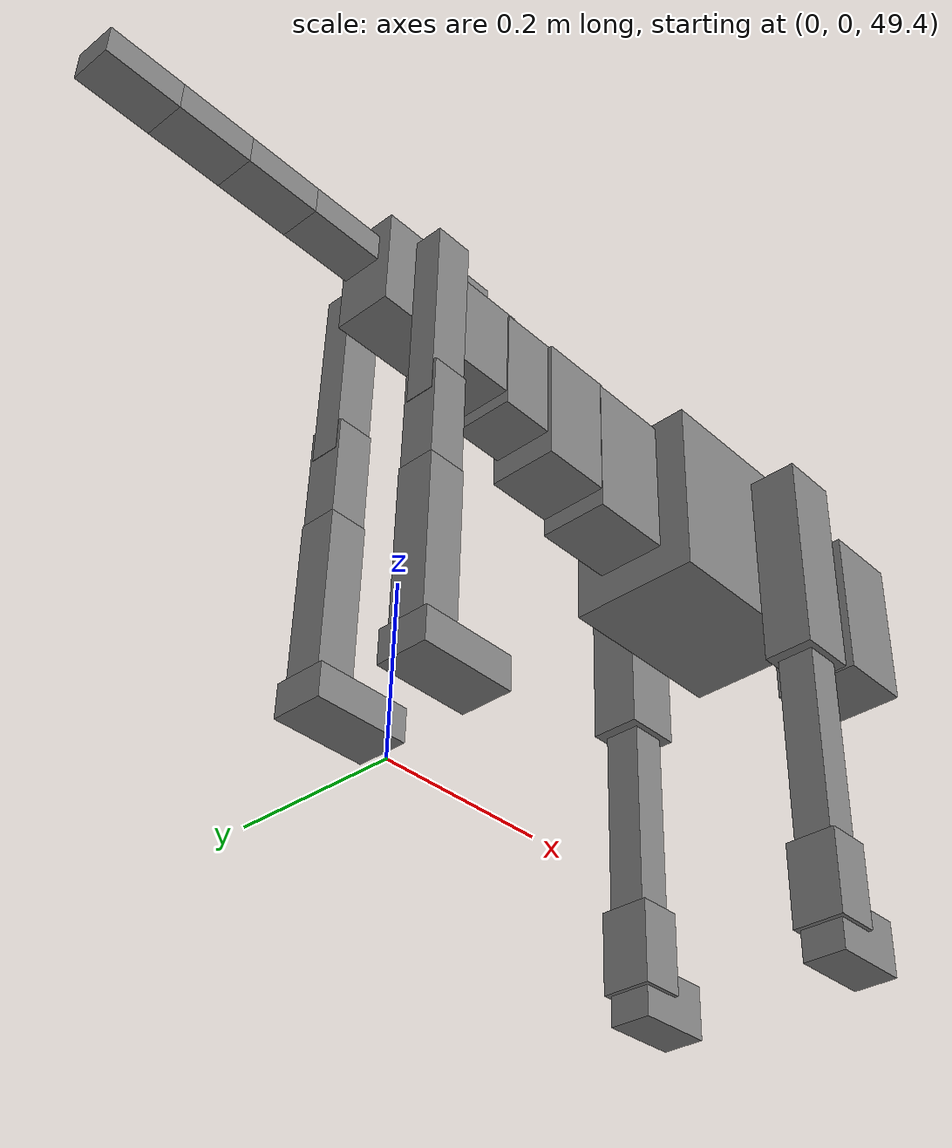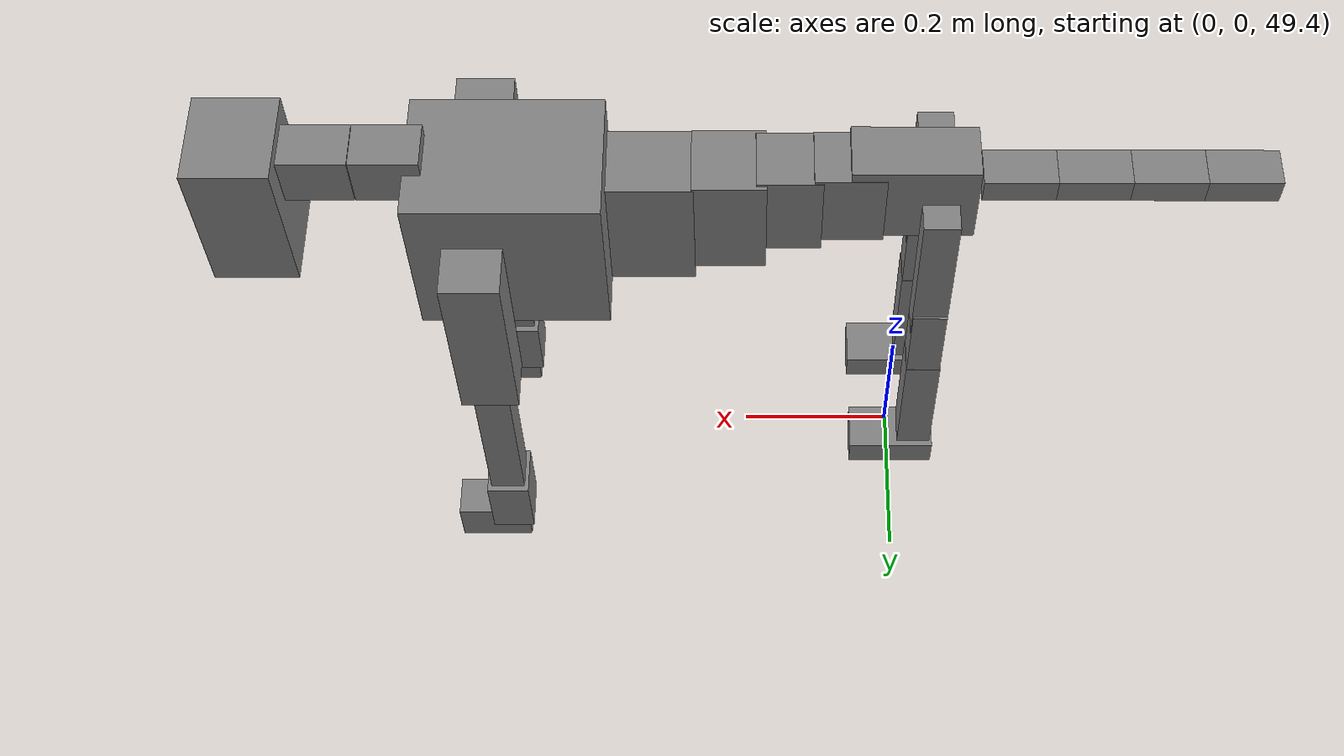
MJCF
<mujoco model="dog">

    <default>
        <joint armature="0.02" stiffness="1" damping="0.2" limited="true"/>
        <geom condim="3" friction="1 0.05 0.05" margin="0.01"/>
        <motor ctrllimited="true" ctrlrange="-1.0 1.0" forcelimited="true" gear="50"/>
    </default>

    <compiler inertiafromgeom="true" angle="radian"/>

    <option timestep="0.016" iterations="50" tolerance="1e-10" solver="Newton" jacobian="dense" cone="pyramidal"/>

    <size nconmax="20000" njmax="60000" nstack="5000000"/>
    <visual>
        <map force="0.1" zfar="30"/>
        <rgba haze="0.15 0.25 0.35 1"/>
        <quality shadowsize="2048"/>
        <global offwidth="800" offheight="800"/>
    </visual>

    <asset>
        <texture type="skybox" builtin="gradient" rgb1="0.3 0.5 0.7" rgb2="0 0 0" width="512" height="512"/>
        <texture name="texplane" type="2d" builtin="checker" rgb1=".2 .3 .4" rgb2=".1 0.15 0.2" width="512" height="512"
                 mark="cross" markrgb=".8 .8 .8"/>
        <texture name="texgeom" type="cube" builtin="flat" mark="cross" width="127" height="1278" rgb1="0.8 0.6 0.4"
                 rgb2="0.8 0.6 0.4" markrgb="1 1 1" random="0.01"/>

        <material name="matplane" reflectance="0.3" texture="texplane" texrepeat="1 1" texuniform="true"/>
        <material name="matgeom" texture="texgeom" texuniform="true" rgba="0.8 0.6 .4 1"/>
    </asset>

    <worldbody>
        <geom name="floor" pos="0 0 0" size="0 0 .25" type="plane" material="matplane" condim="3"/>

        <light directional="false" diffuse=".2 .2 .2" specular="0 0 0" pos="0 0 5" dir="0 0 -1" castshadow="false"/>
        <light mode="targetbodycom" target="torso" directional="false" diffuse=".8 .8 .8" specular="0.3 0.3 0.3"
               pos="0 0 4.0" dir="0 0 -1"/>

        <body name="root" pos="0 0 50">
            <freejoint name="root_1"/>
            <geom type="box" pos="0 0 -0.02" size="0.0774  0.0358  0.063" density="2030"/>

            <body name="spine1" pos="0.054 0 0">
                <joint name="spine1_y" axis="0 1 0" range="0 0.7" limited="true"/>
                <geom type="box" pos="0.02375 0 -0.03" size="0.04375  0.0375  0.05985" density="2030"/>

                <body name="spine2" pos="0.0612 0 0">
                    <joint name="spine2_y" axis="0 1 0" range="-0.15 0.15" limited="true"/>
                    <geom type="box" pos="0.03555  0  -0.04" size="0.04055  0.039  0.06615" density="2030"/>

                    <body name="spine3" pos="0.0730 0 0">
                        <joint name="spine3_y" axis="0 1 0" range="-0.15 0.15" limited="true"/>
                        <geom type="box" pos="0.03555  0  -0.057" size="0.04555  0.0445  0.081" density="2030"/>

                        <body name="spine4" pos="0.0780 0 0">
                            <joint name="spine4_y" axis="0 1 0" range="-0.15 0.15" limited="true"/>
                            <geom type="box" pos="0.05265  0  -0.07" size="0.05265  0.045  0.09135" density="2030"/>

                            <body name="torso" pos="0.1082 0 0">
                                <joint name="torso_y" axis="0 1 0" range="-0.15 0.15" limited="true"/>
                                <geom type="box" pos="0.11925  0  -0.085" size="0.11925  0.085  0.11745"
                                      density="2030"/>

                                <body name="neck1" pos="0.2160  0   0.0180">
                                    <joint name="neck1_y" axis="0 1 0" range="-1.2  -1" limited="true"/>
                                    <geom type="box" pos="0.0423  0  0" size="0.0423  0.03  0.036" density="2325"/>

                                    <body name="neck2" pos="0.0853  0  0">
                                        <joint name="neck2_y" axis="0 1 0" range="0.1  0" limited="true"/>
                                        <geom type="box" pos="0.0423  0  0" size="0.0423  0.03  0.036" density="2325"/>

                                        <body name="head" pos="0.0853  0  0">
                                            <joint name="head_y" axis="0 1 0" range="-0.3  -0.2" limited="true"/>
                                            <geom type="box" pos="0.0531  0  -0.055" size="0.0531  0.06  0.1044"
                                                  density="4030"/>

                                        </body>
                                    </body>
                                </body>

                                <body name="front_shoulder" pos="0.156  0   -0.0480">
                                    <joint name="front_shoulder_y" axis="0 1 0" range="-1 1.5" limited="true"/>
                                    <geom type="box" pos="0 0.13 -0.1050" size="0.0367  0.0313  0.1317" density="1158"/>
                                    <geom type="box" pos="0 -0.13 -0.1050" size="0.0367  0.0313  0.1317"
                                          density="1158"/>

                                    <body name="front_elbow" pos="0  0  -0.2100">
                                        <joint name="front_elbow_y" axis="0 1 0" range="-2 0" limited="true"/>
                                        <geom type="box" pos="0 0.13 -0.1382" size="0.0228  0.0233  0.1382"
                                              density="1081"/>
                                        <geom type="box" pos="0 -0.13 -0.1382" size="0.0228  0.0233  0.1382"
                                              density="1081"/>

                                        <body name="front_wrist" pos="0  0  -0.2764">
                                            <joint name="front_wrist_y" axis="0 1 0" range="-0.2 0" limited="true"/>
                                            <geom type="box" pos="0 0.13 -0.0380" size="0.0281  0.0313  0.0512"
                                                  density="1664"/>
                                            <geom type="box" pos="0 -0.13 -0.0380" size="0.0281  0.0313  0.0512"
                                                  density="1664"/>

                                            <body name="front_finger_end" pos="0  0  -0.0761">
                                                <joint name="front_finger_y" axis="0 1 0" range="-0.4 1"
                                                       limited="true"/>
                                                <geom type="box" pos="0.0264  0.13  -0.0175"
                                                      size="0.0484  0.0264  0.0325" density="1515"/>
                                                <geom type="box" pos="0.0264  -0.13  -0.0175"
                                                      size="0.0484  0.0264  0.0325" density="1515"/>

                                            </body>

                                        </body>
                                    </body>
                                </body>

                            </body>
                        </body>
                    </body>
                </body>
            </body>

            <body name="back_hip" pos="-0.03 0 -0.018">
                <joint name="back_hip_y" axis="0 1 0" range="-1.5 0.3" limited="true"/>
                <geom type="box" pos="0 0.07 -0.0926" size="0.0224  0.0176  0.1154" density="1154"/>
                <geom type="box" pos="0 -0.07 -0.0926" size="0.0224  0.0176  0.1154" density="1154"/>

                <body name="back_knee" pos="0  0  -0.1852">
                    <joint name="back_knee_y" axis="0 1 0" range="0 2.8" limited="true"/>
                    <geom type="box" pos="0 0.07 -0.0598" size="0.0217  0.0213  0.0753" density="1227"/>
                    <geom type="box" pos="0 -0.07 -0.0598" size="0.0217  0.0213  0.0753" density="1227"/>

                    <body name="back_ankle" pos="0  0  -0.1195">
                        <joint name="back_ankle_y" axis="0 1 0" range="-2.2 0" limited="true"/>
                        <geom type="box" pos="0 0.07 -0.0968" size="0.0225  0.0225  0.1081" density="1284"/>
                        <geom type="box" pos="0 -0.07 -0.0968" size="0.0225  0.0225  0.1081" density="1284"/>

                        <body name="back_toe_end" pos="0  0  -0.1936">
                            <joint name="back_toe_y" axis="0 1 0" range="-0.4 1" limited="true"/>
                            <geom type="box" pos="0.0309  0.07  -0.0049" size="0.0567  0.0309  0.0199" density="1515"/>
                            <geom type="box" pos="0.0309  -0.07  -0.0049" size="0.0567  0.0309  0.0199" density="1515"/>

                        </body>
                    </body>
                </body>
            </body>

            <body name="tail1" pos="-0.074 0 -0.006">
                <joint name="tail1_y" axis="0 1 0" range="-0.2 0.2" limited="true"/>
                <geom type="box" pos="-0.0536  0  0" size="0.045  0.025  0.0175" density="1587"/>

                <body name="tail2" pos="-0.09 0 0">
                    <joint name="tail2_y" axis="0 1 0" range="-0.2 0.2" limited="true"/>
                    <geom type="box" pos="-0.0536  0  0" size="0.045  0.025  0.0175" density="1587"/>

                    <body name="tail3" pos="-0.09 0 0">
                        <joint name="tail3_y" axis="0 1 0" range="-0.2 0.2" limited="true"/>
                        <geom type="box" pos="-0.0536  0  0" size="0.045  0.025  0.0175" density="1587"/>

                        <body name="tail4" pos="-0.09 0 0">
                            <joint name="tail4_y" axis="0 1 0" range="-0.2 0.2" limited="true"/>
                            <geom type="box" pos="-0.0536  0  0" size="0.045  0.025  0.0175" density="1587"/>

                        </body>
                    </body>
                </body>
            </body>
        </body>
    </worldbody>

    <actuator>
        <motor joint="spine1_y" forcerange="-150 150     "/>
        <motor joint="spine2_y" forcerange="-150 150     "/>
        <motor joint="spine3_y" forcerange="-150 150     "/>
        <motor joint="spine4_y" forcerange="-150 150     "/>
        <motor joint="torso_y" forcerange="-150 150     "/>
        <motor joint="neck1_y" forcerange="-100 100       "/>
        <motor joint="neck2_y" forcerange="-100 100       "/>
        <motor joint="head_y" forcerange="-150 150       "/>
        <motor joint="front_shoulder_y" forcerange="-169.80 139.06"/>
        <motor joint="front_elbow_y" forcerange="-152.42 116.78"/>
        <motor joint="front_wrist_y" forcerange="-136.81 113.27"/>
        <motor joint="front_finger_y" forcerange="-59.61 41.18"/>
        <motor joint="back_hip_y" forcerange="-203.40 231.02"/>
        <motor joint="back_knee_y" forcerange="-254.63 255.82"/>
        <motor joint="back_angle_y" forcerange="-205.81 53.72"/>
        <motor joint="back_toe_y" forcerange="-70.27 97.28"/>
        <motor joint="tail1_y" forcerange="-50 50     "/>
        <motor joint="tail2_y" forcerange="-50 50     "/>
        <motor joint="tail3_y" forcerange="-50 50     "/>
        <motor joint="tail4_y" forcerange="-50 50     "/>
    </actuator>
</mujoco>
